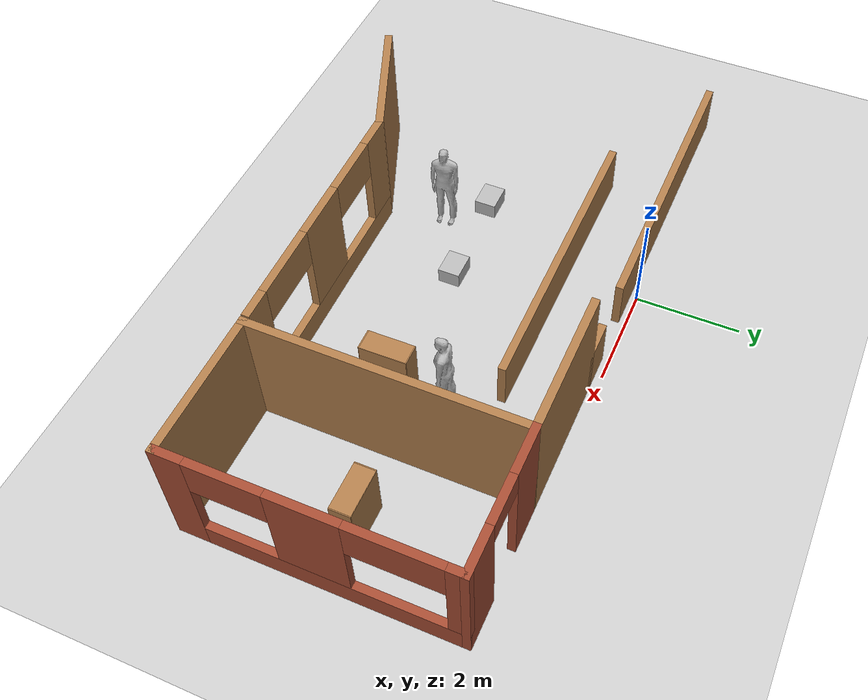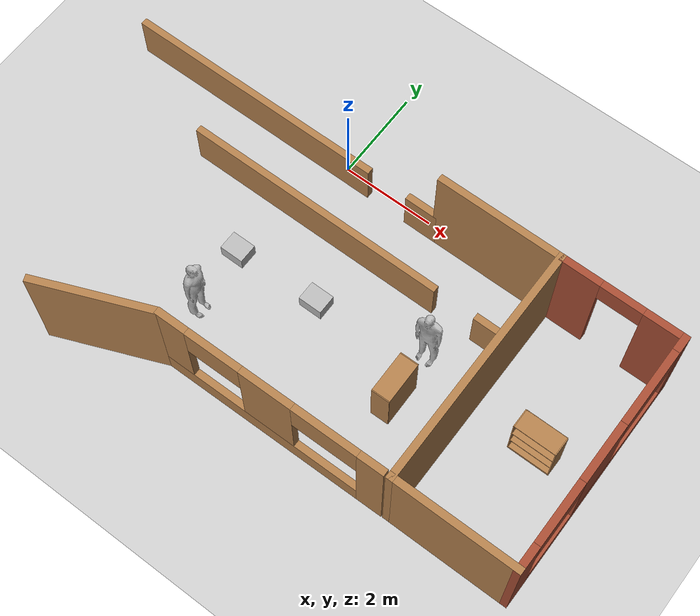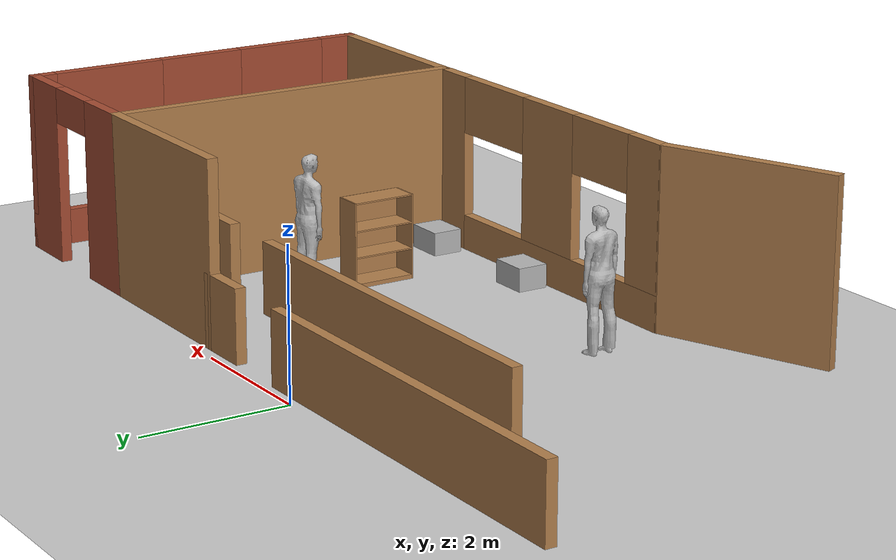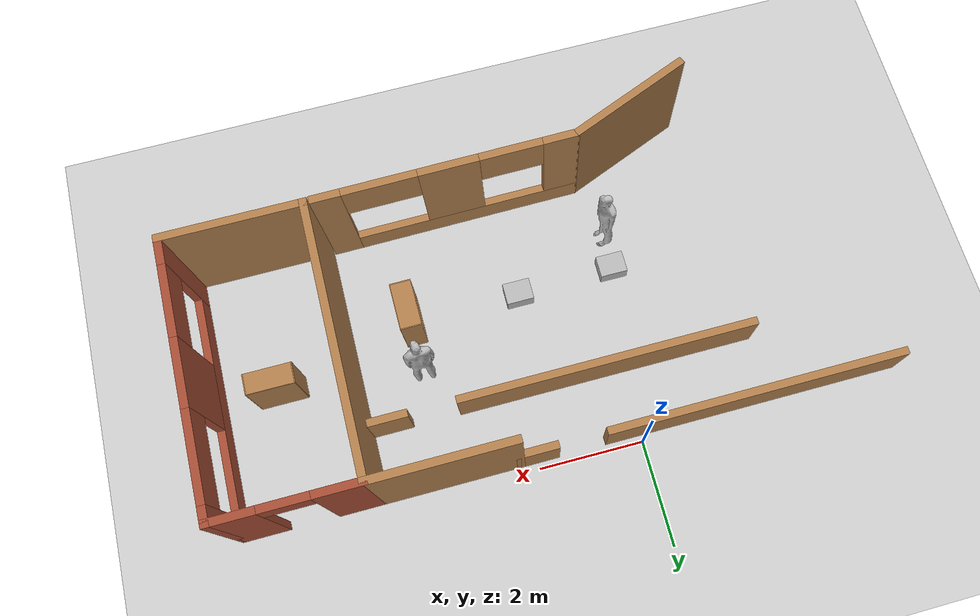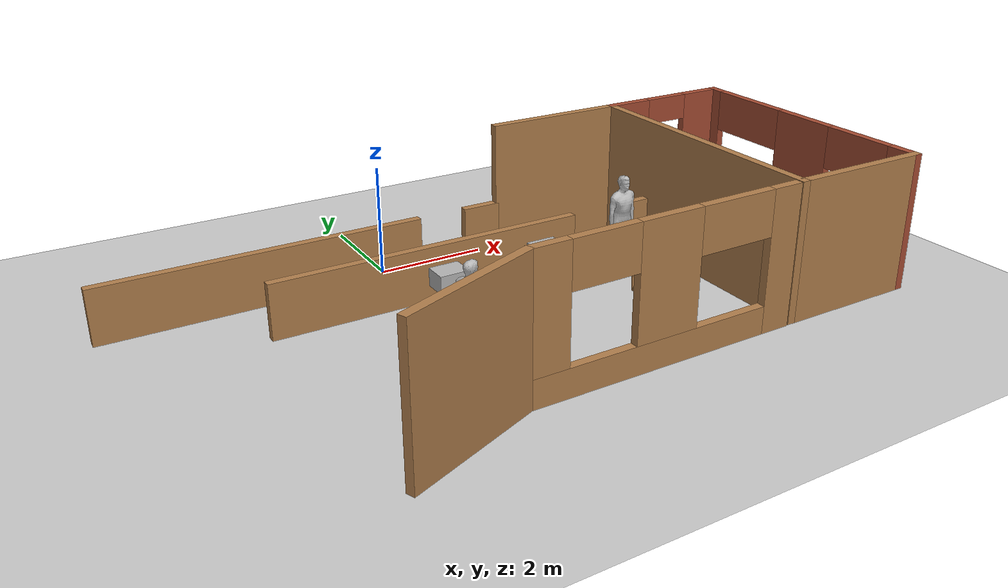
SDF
<sdf version="1.7">
 <world name="default">
  <model name="ground_plane">
   <static>1</static>
   <link name="link">
    <collision name="collision">
     <geometry><plane><normal>0 0 1</normal><size>100 100</size></plane></geometry>
     <surface><friction><ode><mu>100</mu><mu2>50</mu2></ode></friction></surface>
    </collision>
    <visual name="visual">
     <cast_shadows>0</cast_shadows>
     <geometry><plane><normal>0 0 1</normal><size>100 100</size></plane></geometry>
     <material>
      <script><uri>file://media/materials/scripts/gazebo.material</uri><name>Gazebo/Grey</name></script>
     </material>
    </visual>
   </link>
  </model>
  <model name="turtlebot3_house3">
   <link name="Wall_106">
    <pose>6.2 -0.175 0 0 -0 0</pose>
    <visual name="Wall_106_Visual_2">
     <pose>0.019471 0 2.25 0 -0 0</pose>
     <geometry><box><size>0.9 0.15 0.5</size></box></geometry>
     <material>
      <script><uri>file://media/materials/scripts/gazebo.material</uri><name>Gazebo/Bricks</name></script>
      <ambient>1 1 1 1</ambient>
      <diffuse>1 1 1 1</diffuse>
      <specular>0.2 0.2 0.2 1</specular>
      <emissive>0 0 0 1</emissive>
      <shader type="pixel"/>
     </material>
    </visual>
    <visual name="Wall_106_Visual_0">
     <pose>-0.902765 0 1.25 0 -0 0</pose>
     <geometry><box><size>0.944471 0.15 2.5</size></box></geometry>
     <material>
      <script><uri>file://media/materials/scripts/gazebo.material</uri><name>Gazebo/Bricks</name></script>
      <ambient>1 1 1 1</ambient>
      <diffuse>1 1 1 1</diffuse>
      <specular>0.2 0.2 0.2 1</specular>
      <emissive>0 0 0 1</emissive>
      <shader type="pixel"/>
     </material>
    </visual>
    <visual name="Wall_106_Visual_1">
     <pose>0.922235 0 1.25 0 -0 0</pose>
     <geometry><box><size>0.905529 0.15 2.5</size></box></geometry>
     <material>
      <script><uri>file://media/materials/scripts/gazebo.material</uri><name>Gazebo/Bricks</name></script>
      <ambient>1 1 1 1</ambient>
      <diffuse>1 1 1 1</diffuse>
      <specular>0.2 0.2 0.2 1</specular>
      <emissive>0 0 0 1</emissive>
      <shader type="pixel"/>
     </material>
    </visual>
    <collision name="Wall_106_Collision_0">
     <pose>-0.902765 0 1.25 0 -0 0</pose>
     <geometry><box><size>0.944471 0.15 2.5</size></box></geometry>
     <surface>
      <friction>
       <ode><mu>1</mu><mu2>1</mu2><fdir1>0 0 0</fdir1><slip1>0</slip1><slip2>0</slip2></ode>
       <torsional>
        <coefficient>1</coefficient>
        <patch_radius>0</patch_radius>
        <surface_radius>0</surface_radius>
        <use_patch_radius>1</use_patch_radius>
        <ode><slip>0</slip></ode>
       </torsional>
      </friction>
      <bounce><restitution_coefficient>0</restitution_coefficient><threshold>1e+06</threshold></bounce>
      <contact>
       <collide_without_contact>0</collide_without_contact>
       <collide_without_contact_bitmask>1</collide_without_contact_bitmask>
       <collide_bitmask>1</collide_bitmask>
       <ode>
        <soft_cfm>0</soft_cfm>
        <soft_erp>0.2</soft_erp>
        <kp>1e+13</kp>
        <kd>1</kd>
        <max_vel>0.01</max_vel>
        <min_depth>0</min_depth>
       </ode>
       <bullet>
        <split_impulse>1</split_impulse>
        <split_impulse_penetration_threshold>-0.01</split_impulse_penetration_threshold>
        <soft_cfm>0</soft_cfm>
        <soft_erp>0.2</soft_erp>
        <kp>1e+13</kp>
        <kd>1</kd>
       </bullet>
      </contact>
     </surface>
    </collision>
    <collision name="Wall_106_Collision_1">
     <pose>0.922235 0 1.25 0 -0 0</pose>
     <geometry><box><size>0.905529 0.15 2.5</size></box></geometry>
     <surface>
      <friction>
       <ode><mu>1</mu><mu2>1</mu2><fdir1>0 0 0</fdir1><slip1>0</slip1><slip2>0</slip2></ode>
       <torsional>
        <coefficient>1</coefficient>
        <patch_radius>0</patch_radius>
        <surface_radius>0</surface_radius>
        <use_patch_radius>1</use_patch_radius>
        <ode><slip>0</slip></ode>
       </torsional>
      </friction>
      <bounce><restitution_coefficient>0</restitution_coefficient><threshold>1e+06</threshold></bounce>
      <contact>
       <collide_without_contact>0</collide_without_contact>
       <collide_without_contact_bitmask>1</collide_without_contact_bitmask>
       <collide_bitmask>1</collide_bitmask>
       <ode>
        <soft_cfm>0</soft_cfm>
        <soft_erp>0.2</soft_erp>
        <kp>1e+13</kp>
        <kd>1</kd>
        <max_vel>0.01</max_vel>
        <min_depth>0</min_depth>
       </ode>
       <bullet>
        <split_impulse>1</split_impulse>
        <split_impulse_penetration_threshold>-0.01</split_impulse_penetration_threshold>
        <soft_cfm>0</soft_cfm>
        <soft_erp>0.2</soft_erp>
        <kp>1e+13</kp>
        <kd>1</kd>
       </bullet>
      </contact>
     </surface>
    </collision>
    <collision name="Wall_106_Collision_2">
     <pose>0.019471 0 2.25 0 -0 0</pose>
     <geometry><box><size>0.9 0.15 0.5</size></box></geometry>
     <surface>
      <friction>
       <ode><mu>1</mu><mu2>1</mu2><fdir1>0 0 0</fdir1><slip1>0</slip1><slip2>0</slip2></ode>
       <torsional>
        <coefficient>1</coefficient>
        <patch_radius>0</patch_radius>
        <surface_radius>0</surface_radius>
        <use_patch_radius>1</use_patch_radius>
        <ode><slip>0</slip></ode>
       </torsional>
      </friction>
      <bounce><restitution_coefficient>0</restitution_coefficient><threshold>1e+06</threshold></bounce>
      <contact>
       <collide_without_contact>0</collide_without_contact>
       <collide_without_contact_bitmask>1</collide_without_contact_bitmask>
       <collide_bitmask>1</collide_bitmask>
       <ode>
        <soft_cfm>0</soft_cfm>
        <soft_erp>0.2</soft_erp>
        <kp>1e+13</kp>
        <kd>1</kd>
        <max_vel>0.01</max_vel>
        <min_depth>0</min_depth>
       </ode>
       <bullet>
        <split_impulse>1</split_impulse>
        <split_impulse_penetration_threshold>-0.01</split_impulse_penetration_threshold>
        <soft_cfm>0</soft_cfm>
        <soft_erp>0.2</soft_erp>
        <kp>1e+13</kp>
        <kd>1</kd>
       </bullet>
      </contact>
     </surface>
    </collision>
   </link>
   <link name="Wall_108">
    <pose>-1.37512 -0.17488 0 0 -0 0</pose>
    <visual name="Wall_108_Visual_1">
     <pose>3.34368 0 0.5 0 -0 0</pose>
     <geometry><box><size>0.812647 0.15 1</size></box></geometry>
     <material>
      <script><uri>file://media/materials/scripts/gazebo.material</uri><name>Gazebo/Wood</name></script>
      <ambient>1 1 1 1</ambient>
      <diffuse>1 1 1 1</diffuse>
      <specular>0.2 0.2 0.2 1</specular>
      <emissive>0 0 0 1</emissive>
      <shader type="pixel"/>
     </material>
    </visual>
    <visual name="Wall_108_Visual_0">
     <pose>-0.856324 0 0.5 0 -0 0</pose>
     <geometry><box><size>5.78735 0.15 1</size></box></geometry>
     <material>
      <script><uri>file://media/materials/scripts/gazebo.material</uri><name>Gazebo/Wood</name></script>
      <ambient>1 1 1 1</ambient>
      <diffuse>1 1 1 1</diffuse>
      <specular>0.2 0.2 0.2 1</specular>
      <emissive>0 0 0 1</emissive>
      <shader type="pixel"/>
     </material>
    </visual>
    <collision name="Wall_108_Collision_0">
     <pose>-0.856324 0 0.5 0 -0 0</pose>
     <geometry><box><size>5.78735 0.15 1</size></box></geometry>
     <surface>
      <friction>
       <ode><mu>1</mu><mu2>1</mu2><fdir1>0 0 0</fdir1><slip1>0</slip1><slip2>0</slip2></ode>
       <torsional>
        <coefficient>1</coefficient>
        <patch_radius>0</patch_radius>
        <surface_radius>0</surface_radius>
        <use_patch_radius>1</use_patch_radius>
        <ode><slip>0</slip></ode>
       </torsional>
      </friction>
      <bounce><restitution_coefficient>0</restitution_coefficient><threshold>1e+06</threshold></bounce>
      <contact>
       <collide_without_contact>0</collide_without_contact>
       <collide_without_contact_bitmask>1</collide_without_contact_bitmask>
       <collide_bitmask>1</collide_bitmask>
       <ode>
        <soft_cfm>0</soft_cfm>
        <soft_erp>0.2</soft_erp>
        <kp>1e+13</kp>
        <kd>1</kd>
        <max_vel>0.01</max_vel>
        <min_depth>0</min_depth>
       </ode>
       <bullet>
        <split_impulse>1</split_impulse>
        <split_impulse_penetration_threshold>-0.01</split_impulse_penetration_threshold>
        <soft_cfm>0</soft_cfm>
        <soft_erp>0.2</soft_erp>
        <kp>1e+13</kp>
        <kd>1</kd>
       </bullet>
      </contact>
     </surface>
    </collision>
    <collision name="Wall_108_Collision_1">
     <pose>3.34368 0 0.5 0 -0 0</pose>
     <geometry><box><size>0.812647 0.15 1</size></box></geometry>
     <surface>
      <friction>
       <ode><mu>1</mu><mu2>1</mu2><fdir1>0 0 0</fdir1><slip1>0</slip1><slip2>0</slip2></ode>
       <torsional>
        <coefficient>1</coefficient>
        <patch_radius>0</patch_radius>
        <surface_radius>0</surface_radius>
        <use_patch_radius>1</use_patch_radius>
        <ode><slip>0</slip></ode>
       </torsional>
      </friction>
      <bounce><restitution_coefficient>0</restitution_coefficient><threshold>1e+06</threshold></bounce>
      <contact>
       <collide_without_contact>0</collide_without_contact>
       <collide_without_contact_bitmask>1</collide_without_contact_bitmask>
       <collide_bitmask>1</collide_bitmask>
       <ode>
        <soft_cfm>0</soft_cfm>
        <soft_erp>0.2</soft_erp>
        <kp>1e+13</kp>
        <kd>1</kd>
        <max_vel>0.01</max_vel>
        <min_depth>0</min_depth>
       </ode>
       <bullet>
        <split_impulse>1</split_impulse>
        <split_impulse_penetration_threshold>-0.01</split_impulse_penetration_threshold>
        <soft_cfm>0</soft_cfm>
        <soft_erp>0.2</soft_erp>
        <kp>1e+13</kp>
        <kd>1</kd>
       </bullet>
      </contact>
     </surface>
    </collision>
   </link>
   <link name="Wall_108_clone">
    <pose>1.12429 -1.44761 0 0 -0 0</pose>
    <visual name="Wall_108_Visual_1">
     <pose>3.34368 0 0.5 0 -0 0</pose>
     <geometry><box><size>0.812647 0.15 1</size></box></geometry>
     <material>
      <script><uri>file://media/materials/scripts/gazebo.material</uri><name>Gazebo/Wood</name></script>
      <ambient>1 1 1 1</ambient>
      <diffuse>1 1 1 1</diffuse>
      <specular>0.2 0.2 0.2 1</specular>
      <emissive>0 0 0 1</emissive>
      <shader type="pixel"/>
     </material>
    </visual>
    <visual name="Wall_108_Visual_0">
     <pose>-0.856324 0 0.5 0 -0 0</pose>
     <geometry><box><size>5.78735 0.15 1</size></box></geometry>
     <material>
      <script><uri>file://media/materials/scripts/gazebo.material</uri><name>Gazebo/Wood</name></script>
      <ambient>1 1 1 1</ambient>
      <diffuse>1 1 1 1</diffuse>
      <specular>0.2 0.2 0.2 1</specular>
      <emissive>0 0 0 1</emissive>
      <shader type="pixel"/>
     </material>
    </visual>
    <collision name="Wall_108_Collision_0">
     <pose>-0.856324 0 0.5 0 -0 0</pose>
     <geometry><box><size>5.78735 0.15 1</size></box></geometry>
     <surface>
      <friction>
       <ode><mu>1</mu><mu2>1</mu2><fdir1>0 0 0</fdir1><slip1>0</slip1><slip2>0</slip2></ode>
       <torsional>
        <coefficient>1</coefficient>
        <patch_radius>0</patch_radius>
        <surface_radius>0</surface_radius>
        <use_patch_radius>1</use_patch_radius>
        <ode><slip>0</slip></ode>
       </torsional>
      </friction>
      <bounce><restitution_coefficient>0</restitution_coefficient><threshold>1e+06</threshold></bounce>
      <contact>
       <collide_without_contact>0</collide_without_contact>
       <collide_without_contact_bitmask>1</collide_without_contact_bitmask>
       <collide_bitmask>1</collide_bitmask>
       <ode>
        <soft_cfm>0</soft_cfm>
        <soft_erp>0.2</soft_erp>
        <kp>1e+13</kp>
        <kd>1</kd>
        <max_vel>0.01</max_vel>
        <min_depth>0</min_depth>
       </ode>
       <bullet>
        <split_impulse>1</split_impulse>
        <split_impulse_penetration_threshold>-0.01</split_impulse_penetration_threshold>
        <soft_cfm>0</soft_cfm>
        <soft_erp>0.2</soft_erp>
        <kp>1e+13</kp>
        <kd>1</kd>
       </bullet>
      </contact>
     </surface>
    </collision>
    <collision name="Wall_108_Collision_1">
     <pose>3.34368 0 0.5 0 -0 0</pose>
     <geometry><box><size>0.812647 0.15 1</size></box></geometry>
     <surface>
      <friction>
       <ode><mu>1</mu><mu2>1</mu2><fdir1>0 0 0</fdir1><slip1>0</slip1><slip2>0</slip2></ode>
       <torsional>
        <coefficient>1</coefficient>
        <patch_radius>0</patch_radius>
        <surface_radius>0</surface_radius>
        <use_patch_radius>1</use_patch_radius>
        <ode><slip>0</slip></ode>
       </torsional>
      </friction>
      <bounce><restitution_coefficient>0</restitution_coefficient><threshold>1e+06</threshold></bounce>
      <contact>
       <collide_without_contact>0</collide_without_contact>
       <collide_without_contact_bitmask>1</collide_without_contact_bitmask>
       <collide_bitmask>1</collide_bitmask>
       <ode>
        <soft_cfm>0</soft_cfm>
        <soft_erp>0.2</soft_erp>
        <kp>1e+13</kp>
        <kd>1</kd>
        <max_vel>0.01</max_vel>
        <min_depth>0</min_depth>
       </ode>
       <bullet>
        <split_impulse>1</split_impulse>
        <split_impulse_penetration_threshold>-0.01</split_impulse_penetration_threshold>
        <soft_cfm>0</soft_cfm>
        <soft_erp>0.2</soft_erp>
        <kp>1e+13</kp>
        <kd>1</kd>
       </bullet>
      </contact>
     </surface>
    </collision>
   </link>
   <link name="Wall_86_clone">
    <pose>2.29863 -5.30416 0 0 0 -3.13248</pose>
    <visual name="Wall_86_Visual_2">
     <pose>0.0521 0 1.5 0 -0 0</pose>
     <geometry><box><size>1.14172 0.15 2</size></box></geometry>
     <material>
      <script><uri>file://media/materials/scripts/gazebo.material</uri><name>Gazebo/Wood</name></script>
      <ambient>1 1 1 1</ambient>
      <diffuse>1 1 1 1</diffuse>
      <specular>0.2 0.2 0.2 1</specular>
      <emissive>0 0 0 1</emissive>
      <shader type="pixel"/>
     </material>
    </visual>
    <visual name="Wall_86_Visual_3">
     <pose>2.16098 0 1.5 0 -0 0</pose>
     <geometry><box><size>0.678041 0.15 2</size></box></geometry>
     <material>
      <script><uri>file://media/materials/scripts/gazebo.material</uri><name>Gazebo/Wood</name></script>
      <ambient>1 1 1 1</ambient>
      <diffuse>1 1 1 1</diffuse>
      <specular>0.2 0.2 0.2 1</specular>
      <emissive>0 0 0 1</emissive>
      <shader type="pixel"/>
     </material>
    </visual>
    <visual name="Wall_86_Visual_4">
     <pose>-1.22476 0 2.1 0 -0 0</pose>
     <geometry><box><size>1.412 0.15 0.8</size></box></geometry>
     <material>
      <script><uri>file://media/materials/scripts/gazebo.material</uri><name>Gazebo/Wood</name></script>
      <ambient>1 1 1 1</ambient>
      <diffuse>1 1 1 1</diffuse>
      <specular>0.2 0.2 0.2 1</specular>
      <emissive>0 0 0 1</emissive>
      <shader type="pixel"/>
     </material>
    </visual>
    <visual name="Wall_86_Visual_1">
     <pose>0.28462 0 0.25 0 -0 0</pose>
     <geometry><box><size>4.43076 0.15 0.5</size></box></geometry>
     <material>
      <script><uri>file://media/materials/scripts/gazebo.material</uri><name>Gazebo/Wood</name></script>
      <ambient>1 1 1 1</ambient>
      <diffuse>1 1 1 1</diffuse>
      <specular>0.2 0.2 0.2 1</specular>
      <emissive>0 0 0 1</emissive>
      <shader type="pixel"/>
     </material>
    </visual>
    <visual name="Wall_86_Visual_5">
     <pose>1.22246 0 2.1 0 -0 0</pose>
     <geometry><box><size>1.199 0.15 0.8</size></box></geometry>
     <material>
      <script><uri>file://media/materials/scripts/gazebo.material</uri><name>Gazebo/Wood</name></script>
      <ambient>1 1 1 1</ambient>
      <diffuse>1 1 1 1</diffuse>
      <specular>0.2 0.2 0.2 1</specular>
      <emissive>0 0 0 1</emissive>
      <shader type="pixel"/>
     </material>
    </visual>
    <visual name="Wall_86_Visual_0">
     <pose>-2.21538 0 1.25 0 -0 0</pose>
     <geometry><box><size>0.569241 0.15 2.5</size></box></geometry>
     <material>
      <script><uri>file://media/materials/scripts/gazebo.material</uri><name>Gazebo/Wood</name></script>
      <ambient>1 1 1 1</ambient>
      <diffuse>1 1 1 1</diffuse>
      <specular>0.2 0.2 0.2 1</specular>
      <emissive>0 0 0 1</emissive>
      <shader type="pixel"/>
     </material>
    </visual>
    <collision name="Wall_86_Collision_0">
     <pose>-2.21538 0 1.25 0 -0 0</pose>
     <geometry><box><size>0.569241 0.15 2.5</size></box></geometry>
     <surface>
      <friction>
       <ode><mu>1</mu><mu2>1</mu2><fdir1>0 0 0</fdir1><slip1>0</slip1><slip2>0</slip2></ode>
       <torsional>
        <coefficient>1</coefficient>
        <patch_radius>0</patch_radius>
        <surface_radius>0</surface_radius>
        <use_patch_radius>1</use_patch_radius>
        <ode><slip>0</slip></ode>
       </torsional>
      </friction>
      <bounce><restitution_coefficient>0</restitution_coefficient><threshold>1e+06</threshold></bounce>
      <contact>
       <collide_without_contact>0</collide_without_contact>
       <collide_without_contact_bitmask>1</collide_without_contact_bitmask>
       <collide_bitmask>1</collide_bitmask>
       <ode>
        <soft_cfm>0</soft_cfm>
        <soft_erp>0.2</soft_erp>
        <kp>1e+13</kp>
        <kd>1</kd>
        <max_vel>0.01</max_vel>
        <min_depth>0</min_depth>
       </ode>
       <bullet>
        <split_impulse>1</split_impulse>
        <split_impulse_penetration_threshold>-0.01</split_impulse_penetration_threshold>
        <soft_cfm>0</soft_cfm>
        <soft_erp>0.2</soft_erp>
        <kp>1e+13</kp>
        <kd>1</kd>
       </bullet>
      </contact>
     </surface>
    </collision>
    <collision name="Wall_86_Collision_4">
     <pose>-1.22476 0 2.1 0 -0 0</pose>
     <geometry><box><size>1.412 0.15 0.8</size></box></geometry>
     <surface>
      <friction>
       <ode><mu>1</mu><mu2>1</mu2><fdir1>0 0 0</fdir1><slip1>0</slip1><slip2>0</slip2></ode>
       <torsional>
        <coefficient>1</coefficient>
        <patch_radius>0</patch_radius>
        <surface_radius>0</surface_radius>
        <use_patch_radius>1</use_patch_radius>
        <ode><slip>0</slip></ode>
       </torsional>
      </friction>
      <bounce><restitution_coefficient>0</restitution_coefficient><threshold>1e+06</threshold></bounce>
      <contact>
       <collide_without_contact>0</collide_without_contact>
       <collide_without_contact_bitmask>1</collide_without_contact_bitmask>
       <collide_bitmask>1</collide_bitmask>
       <ode>
        <soft_cfm>0</soft_cfm>
        <soft_erp>0.2</soft_erp>
        <kp>1e+13</kp>
        <kd>1</kd>
        <max_vel>0.01</max_vel>
        <min_depth>0</min_depth>
       </ode>
       <bullet>
        <split_impulse>1</split_impulse>
        <split_impulse_penetration_threshold>-0.01</split_impulse_penetration_threshold>
        <soft_cfm>0</soft_cfm>
        <soft_erp>0.2</soft_erp>
        <kp>1e+13</kp>
        <kd>1</kd>
       </bullet>
      </contact>
     </surface>
    </collision>
    <collision name="Wall_86_Collision_3">
     <pose>2.16098 0 1.5 0 -0 0</pose>
     <geometry><box><size>0.678041 0.15 2</size></box></geometry>
     <surface>
      <friction>
       <ode><mu>1</mu><mu2>1</mu2><fdir1>0 0 0</fdir1><slip1>0</slip1><slip2>0</slip2></ode>
       <torsional>
        <coefficient>1</coefficient>
        <patch_radius>0</patch_radius>
        <surface_radius>0</surface_radius>
        <use_patch_radius>1</use_patch_radius>
        <ode><slip>0</slip></ode>
       </torsional>
      </friction>
      <bounce><restitution_coefficient>0</restitution_coefficient><threshold>1e+06</threshold></bounce>
      <contact>
       <collide_without_contact>0</collide_without_contact>
       <collide_without_contact_bitmask>1</collide_without_contact_bitmask>
       <collide_bitmask>1</collide_bitmask>
       <ode>
        <soft_cfm>0</soft_cfm>
        <soft_erp>0.2</soft_erp>
        <kp>1e+13</kp>
        <kd>1</kd>
        <max_vel>0.01</max_vel>
        <min_depth>0</min_depth>
       </ode>
       <bullet>
        <split_impulse>1</split_impulse>
        <split_impulse_penetration_threshold>-0.01</split_impulse_penetration_threshold>
        <soft_cfm>0</soft_cfm>
        <soft_erp>0.2</soft_erp>
        <kp>1e+13</kp>
        <kd>1</kd>
       </bullet>
      </contact>
     </surface>
    </collision>
    <collision name="Wall_86_Collision_2">
     <pose>0.0521 0 1.5 0 -0 0</pose>
     <geometry><box><size>1.14172 0.15 2</size></box></geometry>
     <surface>
      <friction>
       <ode><mu>1</mu><mu2>1</mu2><fdir1>0 0 0</fdir1><slip1>0</slip1><slip2>0</slip2></ode>
       <torsional>
        <coefficient>1</coefficient>
        <patch_radius>0</patch_radius>
        <surface_radius>0</surface_radius>
        <use_patch_radius>1</use_patch_radius>
        <ode><slip>0</slip></ode>
       </torsional>
      </friction>
      <bounce><restitution_coefficient>0</restitution_coefficient><threshold>1e+06</threshold></bounce>
      <contact>
       <collide_without_contact>0</collide_without_contact>
       <collide_without_contact_bitmask>1</collide_without_contact_bitmask>
       <collide_bitmask>1</collide_bitmask>
       <ode>
        <soft_cfm>0</soft_cfm>
        <soft_erp>0.2</soft_erp>
        <kp>1e+13</kp>
        <kd>1</kd>
        <max_vel>0.01</max_vel>
        <min_depth>0</min_depth>
       </ode>
       <bullet>
        <split_impulse>1</split_impulse>
        <split_impulse_penetration_threshold>-0.01</split_impulse_penetration_threshold>
        <soft_cfm>0</soft_cfm>
        <soft_erp>0.2</soft_erp>
        <kp>1e+13</kp>
        <kd>1</kd>
       </bullet>
      </contact>
     </surface>
    </collision>
    <collision name="Wall_86_Collision_1">
     <pose>0.28462 0 0.25 0 -0 0</pose>
     <geometry><box><size>4.43076 0.15 0.5</size></box></geometry>
     <surface>
      <friction>
       <ode><mu>1</mu><mu2>1</mu2><fdir1>0 0 0</fdir1><slip1>0</slip1><slip2>0</slip2></ode>
       <torsional>
        <coefficient>1</coefficient>
        <patch_radius>0</patch_radius>
        <surface_radius>0</surface_radius>
        <use_patch_radius>1</use_patch_radius>
        <ode><slip>0</slip></ode>
       </torsional>
      </friction>
      <bounce><restitution_coefficient>0</restitution_coefficient><threshold>1e+06</threshold></bounce>
      <contact>
       <collide_without_contact>0</collide_without_contact>
       <collide_without_contact_bitmask>1</collide_without_contact_bitmask>
       <collide_bitmask>1</collide_bitmask>
       <ode>
        <soft_cfm>0</soft_cfm>
        <soft_erp>0.2</soft_erp>
        <kp>1e+13</kp>
        <kd>1</kd>
        <max_vel>0.01</max_vel>
        <min_depth>0</min_depth>
       </ode>
       <bullet>
        <split_impulse>1</split_impulse>
        <split_impulse_penetration_threshold>-0.01</split_impulse_penetration_threshold>
        <soft_cfm>0</soft_cfm>
        <soft_erp>0.2</soft_erp>
        <kp>1e+13</kp>
        <kd>1</kd>
       </bullet>
      </contact>
     </surface>
    </collision>
    <collision name="Wall_86_Collision_5">
     <pose>1.22246 0 2.1 0 -0 0</pose>
     <geometry><box><size>1.199 0.15 0.8</size></box></geometry>
     <surface>
      <friction>
       <ode><mu>1</mu><mu2>1</mu2><fdir1>0 0 0</fdir1><slip1>0</slip1><slip2>0</slip2></ode>
       <torsional>
        <coefficient>1</coefficient>
        <patch_radius>0</patch_radius>
        <surface_radius>0</surface_radius>
        <use_patch_radius>1</use_patch_radius>
        <ode><slip>0</slip></ode>
       </torsional>
      </friction>
      <bounce><restitution_coefficient>0</restitution_coefficient><threshold>1e+06</threshold></bounce>
      <contact>
       <collide_without_contact>0</collide_without_contact>
       <collide_without_contact_bitmask>1</collide_without_contact_bitmask>
       <collide_bitmask>1</collide_bitmask>
       <ode>
        <soft_cfm>0</soft_cfm>
        <soft_erp>0.2</soft_erp>
        <kp>1e+13</kp>
        <kd>1</kd>
        <max_vel>0.01</max_vel>
        <min_depth>0</min_depth>
       </ode>
       <bullet>
        <split_impulse>1</split_impulse>
        <split_impulse_penetration_threshold>-0.01</split_impulse_penetration_threshold>
        <soft_cfm>0</soft_cfm>
        <soft_erp>0.2</soft_erp>
        <kp>1e+13</kp>
        <kd>1</kd>
       </bullet>
      </contact>
     </surface>
    </collision>
   </link>
   <link name="Wall_87_clone_clone_0_clone">
    <pose>-1.30998 -5.79101 0 0 0 -2.75487</pose>
    <visual name="Wall_87_Visual">
     <pose>0 0 1.25 0 -0 0</pose>
     <geometry><box><size>2.5 0.15 2.5</size></box></geometry>
     <material>
      <script><uri>file://media/materials/scripts/gazebo.material</uri><name>Gazebo/Wood</name></script>
      <ambient>1 1 1 1</ambient>
      <diffuse>1 1 1 1</diffuse>
      <specular>0.2 0.2 0.2 1</specular>
      <emissive>0 0 0 1</emissive>
      <shader type="pixel"/>
     </material>
    </visual>
    <collision name="Wall_87_Collision">
     <pose>0 0 1.25 0 -0 0</pose>
     <geometry><box><size>2.5 0.15 2.5</size></box></geometry>
     <surface>
      <friction>
       <ode><mu>1</mu><mu2>1</mu2><fdir1>0 0 0</fdir1><slip1>0</slip1><slip2>0</slip2></ode>
       <torsional>
        <coefficient>1</coefficient>
        <patch_radius>0</patch_radius>
        <surface_radius>0</surface_radius>
        <use_patch_radius>1</use_patch_radius>
        <ode><slip>0</slip></ode>
       </torsional>
      </friction>
      <bounce><restitution_coefficient>0</restitution_coefficient><threshold>1e+06</threshold></bounce>
      <contact>
       <collide_without_contact>0</collide_without_contact>
       <collide_without_contact_bitmask>1</collide_without_contact_bitmask>
       <collide_bitmask>1</collide_bitmask>
       <ode>
        <soft_cfm>0</soft_cfm>
        <soft_erp>0.2</soft_erp>
        <kp>1e+13</kp>
        <kd>1</kd>
        <max_vel>0.01</max_vel>
        <min_depth>0</min_depth>
       </ode>
       <bullet>
        <split_impulse>1</split_impulse>
        <split_impulse_penetration_threshold>-0.01</split_impulse_penetration_threshold>
        <soft_cfm>0</soft_cfm>
        <soft_erp>0.2</soft_erp>
        <kp>1e+13</kp>
        <kd>1</kd>
       </bullet>
      </contact>
     </surface>
    </collision>
   </link>
   <link name="Wall_92">
    <pose>3.59994 -0.17494 0 0 0 -4.6e-05</pose>
    <visual name="Wall_92_Visual">
     <pose>0 0 1.25 0 -0 0</pose>
     <geometry><box><size>2.75 0.15 2.5</size></box></geometry>
     <material>
      <script><uri>file://media/materials/scripts/gazebo.material</uri><name>Gazebo/Wood</name></script>
      <ambient>1 1 1 1</ambient>
      <diffuse>1 1 1 1</diffuse>
      <specular>0.2 0.2 0.2 1</specular>
      <emissive>0 0 0 1</emissive>
      <shader type="pixel"/>
     </material>
    </visual>
    <collision name="Wall_92_Collision">
     <pose>0 0 1.25 0 -0 0</pose>
     <geometry><box><size>2.75 0.15 2.5</size></box></geometry>
     <surface>
      <friction>
       <ode><mu>1</mu><mu2>1</mu2><fdir1>0 0 0</fdir1><slip1>0</slip1><slip2>0</slip2></ode>
       <torsional>
        <coefficient>1</coefficient>
        <patch_radius>0</patch_radius>
        <surface_radius>0</surface_radius>
        <use_patch_radius>1</use_patch_radius>
        <ode><slip>0</slip></ode>
       </torsional>
      </friction>
      <bounce><restitution_coefficient>0</restitution_coefficient><threshold>1e+06</threshold></bounce>
      <contact>
       <collide_without_contact>0</collide_without_contact>
       <collide_without_contact_bitmask>1</collide_without_contact_bitmask>
       <collide_bitmask>1</collide_bitmask>
       <ode>
        <soft_cfm>0</soft_cfm>
        <soft_erp>0.2</soft_erp>
        <kp>1e+13</kp>
        <kd>1</kd>
        <max_vel>0.01</max_vel>
        <min_depth>0</min_depth>
       </ode>
       <bullet>
        <split_impulse>1</split_impulse>
        <split_impulse_penetration_threshold>-0.01</split_impulse_penetration_threshold>
        <soft_cfm>0</soft_cfm>
        <soft_erp>0.2</soft_erp>
        <kp>1e+13</kp>
        <kd>1</kd>
       </bullet>
      </contact>
     </surface>
    </collision>
   </link>
   <link name="Wall_93">
    <pose>4.9 -2.725 0 0 0 -1.5708</pose>
    <visual name="Wall_93_Visual">
     <pose>0 0 1.25 0 -0 0</pose>
     <geometry><box><size>5.25 0.15 2.5</size></box></geometry>
     <material>
      <script><uri>file://media/materials/scripts/gazebo.material</uri><name>Gazebo/Wood</name></script>
      <ambient>1 1 1 1</ambient>
      <diffuse>1 1 1 1</diffuse>
      <specular>0.2 0.2 0.2 1</specular>
      <emissive>0 0 0 1</emissive>
      <shader type="pixel"/>
     </material>
    </visual>
    <collision name="Wall_93_Collision">
     <pose>0 0 1.25 0 -0 0</pose>
     <geometry><box><size>5.25 0.15 2.5</size></box></geometry>
     <surface>
      <friction>
       <ode><mu>1</mu><mu2>1</mu2><fdir1>0 0 0</fdir1><slip1>0</slip1><slip2>0</slip2></ode>
       <torsional>
        <coefficient>1</coefficient>
        <patch_radius>0</patch_radius>
        <surface_radius>0</surface_radius>
        <use_patch_radius>1</use_patch_radius>
        <ode><slip>0</slip></ode>
       </torsional>
      </friction>
      <bounce><restitution_coefficient>0</restitution_coefficient><threshold>1e+06</threshold></bounce>
      <contact>
       <collide_without_contact>0</collide_without_contact>
       <collide_without_contact_bitmask>1</collide_without_contact_bitmask>
       <collide_bitmask>1</collide_bitmask>
       <ode>
        <soft_cfm>0</soft_cfm>
        <soft_erp>0.2</soft_erp>
        <kp>1e+13</kp>
        <kd>1</kd>
        <max_vel>0.01</max_vel>
        <min_depth>0</min_depth>
       </ode>
       <bullet>
        <split_impulse>1</split_impulse>
        <split_impulse_penetration_threshold>-0.01</split_impulse_penetration_threshold>
        <soft_cfm>0</soft_cfm>
        <soft_erp>0.2</soft_erp>
        <kp>1e+13</kp>
        <kd>1</kd>
       </bullet>
      </contact>
     </surface>
    </collision>
   </link>
   <link name="Wall_94">
    <pose>6.2 -5.275 0 0 -0 0</pose>
    <visual name="Wall_94_Visual">
     <pose>0 0 1.25 0 -0 0</pose>
     <geometry><box><size>2.75 0.15 2.5</size></box></geometry>
     <material>
      <script><uri>file://media/materials/scripts/gazebo.material</uri><name>Gazebo/Wood</name></script>
      <ambient>1 1 1 1</ambient>
      <diffuse>1 1 1 1</diffuse>
      <specular>0.2 0.2 0.2 1</specular>
      <emissive>0 0 0 1</emissive>
      <shader type="pixel"/>
     </material>
    </visual>
    <collision name="Wall_94_Collision">
     <pose>0 0 1.25 0 -0 0</pose>
     <geometry><box><size>2.75 0.15 2.5</size></box></geometry>
     <surface>
      <friction>
       <ode><mu>1</mu><mu2>1</mu2><fdir1>0 0 0</fdir1><slip1>0</slip1><slip2>0</slip2></ode>
       <torsional>
        <coefficient>1</coefficient>
        <patch_radius>0</patch_radius>
        <surface_radius>0</surface_radius>
        <use_patch_radius>1</use_patch_radius>
        <ode><slip>0</slip></ode>
       </torsional>
      </friction>
      <bounce><restitution_coefficient>0</restitution_coefficient><threshold>1e+06</threshold></bounce>
      <contact>
       <collide_without_contact>0</collide_without_contact>
       <collide_without_contact_bitmask>1</collide_without_contact_bitmask>
       <collide_bitmask>1</collide_bitmask>
       <ode>
        <soft_cfm>0</soft_cfm>
        <soft_erp>0.2</soft_erp>
        <kp>1e+13</kp>
        <kd>1</kd>
        <max_vel>0.01</max_vel>
        <min_depth>0</min_depth>
       </ode>
       <bullet>
        <split_impulse>1</split_impulse>
        <split_impulse_penetration_threshold>-0.01</split_impulse_penetration_threshold>
        <soft_cfm>0</soft_cfm>
        <soft_erp>0.2</soft_erp>
        <kp>1e+13</kp>
        <kd>1</kd>
       </bullet>
      </contact>
     </surface>
    </collision>
   </link>
   <link name="Wall_95">
    <pose>7.5 -2.725 0 0 -0 1.5708</pose>
    <visual name="Wall_95_Visual_2">
     <pose>-0.036959 0 1.5 0 -0 0</pose>
     <geometry><box><size>1.27522 0.15 2</size></box></geometry>
     <material>
      <script><uri>file://media/materials/scripts/gazebo.material</uri><name>Gazebo/Bricks</name></script>
      <ambient>1 1 1 1</ambient>
      <diffuse>1 1 1 1</diffuse>
      <specular>0.2 0.2 0.2 1</specular>
      <emissive>0 0 0 1</emissive>
      <shader type="pixel"/>
     </material>
    </visual>
    <visual name="Wall_95_Visual_3">
     <pose>2.43783 0 1.5 0 -0 0</pose>
     <geometry><box><size>0.374348 0.15 2</size></box></geometry>
     <material>
      <script><uri>file://media/materials/scripts/gazebo.material</uri><name>Gazebo/Bricks</name></script>
      <ambient>1 1 1 1</ambient>
      <diffuse>1 1 1 1</diffuse>
      <specular>0.2 0.2 0.2 1</specular>
      <emissive>0 0 0 1</emissive>
      <shader type="pixel"/>
     </material>
    </visual>
    <visual name="Wall_95_Visual_0">
     <pose>-2.32929 0 1.25 0 -0 0</pose>
     <geometry><box><size>0.591431 0.15 2.5</size></box></geometry>
     <material>
      <script><uri>file://media/materials/scripts/gazebo.material</uri><name>Gazebo/Bricks</name></script>
      <ambient>1 1 1 1</ambient>
      <diffuse>1 1 1 1</diffuse>
      <specular>0.2 0.2 0.2 1</specular>
      <emissive>0 0 0 1</emissive>
      <shader type="pixel"/>
     </material>
    </visual>
    <visual name="Wall_95_Visual_1">
     <pose>0.295715 0 0.25 0 -0 0</pose>
     <geometry><box><size>4.65857 0.15 0.5</size></box></geometry>
     <material>
      <script><uri>file://media/materials/scripts/gazebo.material</uri><name>Gazebo/Bricks</name></script>
      <ambient>1 1 1 1</ambient>
      <diffuse>1 1 1 1</diffuse>
      <specular>0.2 0.2 0.2 1</specular>
      <emissive>0 0 0 1</emissive>
      <shader type="pixel"/>
     </material>
    </visual>
    <visual name="Wall_95_Visual_4">
     <pose>-1.35407 0 2.1 0 -0 0</pose>
     <geometry><box><size>1.359 0.15 0.8</size></box></geometry>
     <material>
      <script><uri>file://media/materials/scripts/gazebo.material</uri><name>Gazebo/Bricks</name></script>
      <ambient>1 1 1 1</ambient>
      <diffuse>1 1 1 1</diffuse>
      <specular>0.2 0.2 0.2 1</specular>
      <emissive>0 0 0 1</emissive>
      <shader type="pixel"/>
     </material>
    </visual>
    <visual name="Wall_95_Visual_5">
     <pose>1.42565 0 2.1 0 -0 0</pose>
     <geometry><box><size>1.65 0.15 0.8</size></box></geometry>
     <material>
      <script><uri>file://media/materials/scripts/gazebo.material</uri><name>Gazebo/Bricks</name></script>
      <ambient>1 1 1 1</ambient>
      <diffuse>1 1 1 1</diffuse>
      <specular>0.2 0.2 0.2 1</specular>
      <emissive>0 0 0 1</emissive>
      <shader type="pixel"/>
     </material>
    </visual>
    <collision name="Wall_95_Collision_5">
     <pose>1.42565 0 2.1 0 -0 0</pose>
     <geometry><box><size>1.65 0.15 0.8</size></box></geometry>
     <surface>
      <friction>
       <ode><mu>1</mu><mu2>1</mu2><fdir1>0 0 0</fdir1><slip1>0</slip1><slip2>0</slip2></ode>
       <torsional>
        <coefficient>1</coefficient>
        <patch_radius>0</patch_radius>
        <surface_radius>0</surface_radius>
        <use_patch_radius>1</use_patch_radius>
        <ode><slip>0</slip></ode>
       </torsional>
      </friction>
      <bounce><restitution_coefficient>0</restitution_coefficient><threshold>1e+06</threshold></bounce>
      <contact>
       <collide_without_contact>0</collide_without_contact>
       <collide_without_contact_bitmask>1</collide_without_contact_bitmask>
       <collide_bitmask>1</collide_bitmask>
       <ode>
        <soft_cfm>0</soft_cfm>
        <soft_erp>0.2</soft_erp>
        <kp>1e+13</kp>
        <kd>1</kd>
        <max_vel>0.01</max_vel>
        <min_depth>0</min_depth>
       </ode>
       <bullet>
        <split_impulse>1</split_impulse>
        <split_impulse_penetration_threshold>-0.01</split_impulse_penetration_threshold>
        <soft_cfm>0</soft_cfm>
        <soft_erp>0.2</soft_erp>
        <kp>1e+13</kp>
        <kd>1</kd>
       </bullet>
      </contact>
     </surface>
    </collision>
    <collision name="Wall_95_Collision_2">
     <pose>-0.036959 0 1.5 0 -0 0</pose>
     <geometry><box><size>1.27522 0.15 2</size></box></geometry>
     <surface>
      <friction>
       <ode><mu>1</mu><mu2>1</mu2><fdir1>0 0 0</fdir1><slip1>0</slip1><slip2>0</slip2></ode>
       <torsional>
        <coefficient>1</coefficient>
        <patch_radius>0</patch_radius>
        <surface_radius>0</surface_radius>
        <use_patch_radius>1</use_patch_radius>
        <ode><slip>0</slip></ode>
       </torsional>
      </friction>
      <bounce><restitution_coefficient>0</restitution_coefficient><threshold>1e+06</threshold></bounce>
      <contact>
       <collide_without_contact>0</collide_without_contact>
       <collide_without_contact_bitmask>1</collide_without_contact_bitmask>
       <collide_bitmask>1</collide_bitmask>
       <ode>
        <soft_cfm>0</soft_cfm>
        <soft_erp>0.2</soft_erp>
        <kp>1e+13</kp>
        <kd>1</kd>
        <max_vel>0.01</max_vel>
        <min_depth>0</min_depth>
       </ode>
       <bullet>
        <split_impulse>1</split_impulse>
        <split_impulse_penetration_threshold>-0.01</split_impulse_penetration_threshold>
        <soft_cfm>0</soft_cfm>
        <soft_erp>0.2</soft_erp>
        <kp>1e+13</kp>
        <kd>1</kd>
       </bullet>
      </contact>
     </surface>
    </collision>
    <collision name="Wall_95_Collision_3">
     <pose>2.43783 0 1.5 0 -0 0</pose>
     <geometry><box><size>0.374348 0.15 2</size></box></geometry>
     <surface>
      <friction>
       <ode><mu>1</mu><mu2>1</mu2><fdir1>0 0 0</fdir1><slip1>0</slip1><slip2>0</slip2></ode>
       <torsional>
        <coefficient>1</coefficient>
        <patch_radius>0</patch_radius>
        <surface_radius>0</surface_radius>
        <use_patch_radius>1</use_patch_radius>
        <ode><slip>0</slip></ode>
       </torsional>
      </friction>
      <bounce><restitution_coefficient>0</restitution_coefficient><threshold>1e+06</threshold></bounce>
      <contact>
       <collide_without_contact>0</collide_without_contact>
       <collide_without_contact_bitmask>1</collide_without_contact_bitmask>
       <collide_bitmask>1</collide_bitmask>
       <ode>
        <soft_cfm>0</soft_cfm>
        <soft_erp>0.2</soft_erp>
        <kp>1e+13</kp>
        <kd>1</kd>
        <max_vel>0.01</max_vel>
        <min_depth>0</min_depth>
       </ode>
       <bullet>
        <split_impulse>1</split_impulse>
        <split_impulse_penetration_threshold>-0.01</split_impulse_penetration_threshold>
        <soft_cfm>0</soft_cfm>
        <soft_erp>0.2</soft_erp>
        <kp>1e+13</kp>
        <kd>1</kd>
       </bullet>
      </contact>
     </surface>
    </collision>
    <collision name="Wall_95_Collision_0">
     <pose>-2.32929 0 1.25 0 -0 0</pose>
     <geometry><box><size>0.591431 0.15 2.5</size></box></geometry>
     <surface>
      <friction>
       <ode><mu>1</mu><mu2>1</mu2><fdir1>0 0 0</fdir1><slip1>0</slip1><slip2>0</slip2></ode>
       <torsional>
        <coefficient>1</coefficient>
        <patch_radius>0</patch_radius>
        <surface_radius>0</surface_radius>
        <use_patch_radius>1</use_patch_radius>
        <ode><slip>0</slip></ode>
       </torsional>
      </friction>
      <bounce><restitution_coefficient>0</restitution_coefficient><threshold>1e+06</threshold></bounce>
      <contact>
       <collide_without_contact>0</collide_without_contact>
       <collide_without_contact_bitmask>1</collide_without_contact_bitmask>
       <collide_bitmask>1</collide_bitmask>
       <ode>
        <soft_cfm>0</soft_cfm>
        <soft_erp>0.2</soft_erp>
        <kp>1e+13</kp>
        <kd>1</kd>
        <max_vel>0.01</max_vel>
        <min_depth>0</min_depth>
       </ode>
       <bullet>
        <split_impulse>1</split_impulse>
        <split_impulse_penetration_threshold>-0.01</split_impulse_penetration_threshold>
        <soft_cfm>0</soft_cfm>
        <soft_erp>0.2</soft_erp>
        <kp>1e+13</kp>
        <kd>1</kd>
       </bullet>
      </contact>
     </surface>
    </collision>
    <collision name="Wall_95_Collision_1">
     <pose>0.295715 0 0.25 0 -0 0</pose>
     <geometry><box><size>4.65857 0.15 0.5</size></box></geometry>
     <surface>
      <friction>
       <ode><mu>1</mu><mu2>1</mu2><fdir1>0 0 0</fdir1><slip1>0</slip1><slip2>0</slip2></ode>
       <torsional>
        <coefficient>1</coefficient>
        <patch_radius>0</patch_radius>
        <surface_radius>0</surface_radius>
        <use_patch_radius>1</use_patch_radius>
        <ode><slip>0</slip></ode>
       </torsional>
      </friction>
      <bounce><restitution_coefficient>0</restitution_coefficient><threshold>1e+06</threshold></bounce>
      <contact>
       <collide_without_contact>0</collide_without_contact>
       <collide_without_contact_bitmask>1</collide_without_contact_bitmask>
       <collide_bitmask>1</collide_bitmask>
       <ode>
        <soft_cfm>0</soft_cfm>
        <soft_erp>0.2</soft_erp>
        <kp>1e+13</kp>
        <kd>1</kd>
        <max_vel>0.01</max_vel>
        <min_depth>0</min_depth>
       </ode>
       <bullet>
        <split_impulse>1</split_impulse>
        <split_impulse_penetration_threshold>-0.01</split_impulse_penetration_threshold>
        <soft_cfm>0</soft_cfm>
        <soft_erp>0.2</soft_erp>
        <kp>1e+13</kp>
        <kd>1</kd>
       </bullet>
      </contact>
     </surface>
    </collision>
    <collision name="Wall_95_Collision_4">
     <pose>-1.35407 0 2.1 0 -0 0</pose>
     <geometry><box><size>1.359 0.15 0.8</size></box></geometry>
     <surface>
      <friction>
       <ode><mu>1</mu><mu2>1</mu2><fdir1>0 0 0</fdir1><slip1>0</slip1><slip2>0</slip2></ode>
       <torsional>
        <coefficient>1</coefficient>
        <patch_radius>0</patch_radius>
        <surface_radius>0</surface_radius>
        <use_patch_radius>1</use_patch_radius>
        <ode><slip>0</slip></ode>
       </torsional>
      </friction>
      <bounce><restitution_coefficient>0</restitution_coefficient><threshold>1e+06</threshold></bounce>
      <contact>
       <collide_without_contact>0</collide_without_contact>
       <collide_without_contact_bitmask>1</collide_without_contact_bitmask>
       <collide_bitmask>1</collide_bitmask>
       <ode>
        <soft_cfm>0</soft_cfm>
        <soft_erp>0.2</soft_erp>
        <kp>1e+13</kp>
        <kd>1</kd>
        <max_vel>0.01</max_vel>
        <min_depth>0</min_depth>
       </ode>
       <bullet>
        <split_impulse>1</split_impulse>
        <split_impulse_penetration_threshold>-0.01</split_impulse_penetration_threshold>
        <soft_cfm>0</soft_cfm>
        <soft_erp>0.2</soft_erp>
        <kp>1e+13</kp>
        <kd>1</kd>
       </bullet>
      </contact>
     </surface>
    </collision>
   </link>
   <model name="bookshelf_1_clone">
    <static>1</static>
    <link name="link">
     <inertial><mass>1</mass></inertial>
     <collision name="back">
      <pose>0 0.005 0.6 0 -0 0</pose>
      <geometry><box><size>0.9 0.01 1.2</size></box></geometry>
     </collision>
     <visual name="visual1">
      <pose>0 0.005 0.6 0 -0 0</pose>
      <geometry><box><size>0.9 0.01 1.2</size></box></geometry>
      <material>
       <script><uri>file://media/materials/scripts/gazebo.material</uri><name>Gazebo/Wood</name></script>
      </material>
     </visual>
     <collision name="left_side">
      <pose>0.45 -0.195 0.6 0 -0 0</pose>
      <geometry><box><size>0.02 0.4 1.2</size></box></geometry>
     </collision>
     <visual name="visual2">
      <pose>0.45 -0.195 0.6 0 -0 0</pose>
      <geometry><box><size>0.02 0.4 1.2</size></box></geometry>
      <material>
       <script><uri>file://media/materials/scripts/gazebo.material</uri><name>Gazebo/Wood</name></script>
      </material>
     </visual>
     <collision name="right_side">
      <pose>-0.45 -0.195 0.6 0 -0 0</pose>
      <geometry><box><size>0.02 0.4 1.2</size></box></geometry>
     </collision>
     <visual name="visual3">
      <pose>-0.45 -0.195 0.6 0 -0 0</pose>
      <geometry><box><size>0.02 0.4 1.2</size></box></geometry>
      <material>
       <script><uri>file://media/materials/scripts/gazebo.material</uri><name>Gazebo/Wood</name></script>
      </material>
     </visual>
     <collision name="bottom">
      <pose>0 -0.195 0.03 0 -0 0</pose>
      <geometry><box><size>0.88 0.4 0.06</size></box></geometry>
     </collision>
     <visual name="visual4">
      <pose>0 -0.195 0.03 0 -0 0</pose>
      <geometry><box><size>0.88 0.4 0.06</size></box></geometry>
      <material>
       <script><uri>file://media/materials/scripts/gazebo.material</uri><name>Gazebo/Wood</name></script>
      </material>
     </visual>
     <collision name="top">
      <pose>0 -0.195 1.19 0 -0 0</pose>
      <geometry><box><size>0.88 0.4 0.02</size></box></geometry>
     </collision>
     <visual name="visual5">
      <pose>0 -0.195 1.19 0 -0 0</pose>
      <geometry><box><size>0.88 0.4 0.02</size></box></geometry>
      <material>
       <script><uri>file://media/materials/scripts/gazebo.material</uri><name>Gazebo/Wood</name></script>
      </material>
     </visual>
     <collision name="low_shelf">
      <pose>0 -0.195 0.43 0 -0 0</pose>
      <geometry><box><size>0.88 0.4 0.02</size></box></geometry>
     </collision>
     <visual name="visual6">
      <pose>0 -0.195 0.43 0 -0 0</pose>
      <geometry><box><size>0.88 0.4 0.02</size></box></geometry>
      <material>
       <script><uri>file://media/materials/scripts/gazebo.material</uri><name>Gazebo/Wood</name></script>
      </material>
     </visual>
     <collision name="high_shelf">
      <pose>0 -0.195 0.8 0 -0 0</pose>
      <geometry><box><size>0.88 0.4 0.02</size></box></geometry>
     </collision>
     <visual name="visual7">
      <pose>0 -0.195 0.8 0 -0 0</pose>
      <geometry><box><size>0.88 0.4 0.02</size></box></geometry>
      <material>
       <script><uri>file://media/materials/scripts/gazebo.material</uri><name>Gazebo/Wood</name></script>
      </material>
     </visual>
    </link>
    <pose>3.82787 -3.39584 0 0 0 -1.55995</pose>
   </model>
   <model name="bookshelf_2">
    <static>1</static>
    <link name="link">
     <inertial><mass>1</mass></inertial>
     <collision name="back">
      <pose>0 0.005 0.6 0 -0 0</pose>
      <geometry><box><size>0.9 0.01 1.2</size></box></geometry>
     </collision>
     <visual name="visual1">
      <pose>0 0.005 0.6 0 -0 0</pose>
      <geometry><box><size>0.9 0.01 1.2</size></box></geometry>
      <material>
       <script><uri>file://media/materials/scripts/gazebo.material</uri><name>Gazebo/Wood</name></script>
      </material>
     </visual>
     <collision name="left_side">
      <pose>0.45 -0.195 0.6 0 -0 0</pose>
      <geometry><box><size>0.02 0.4 1.2</size></box></geometry>
     </collision>
     <visual name="visual2">
      <pose>0.45 -0.195 0.6 0 -0 0</pose>
      <geometry><box><size>0.02 0.4 1.2</size></box></geometry>
      <material>
       <script><uri>file://media/materials/scripts/gazebo.material</uri><name>Gazebo/Wood</name></script>
      </material>
     </visual>
     <collision name="right_side">
      <pose>-0.45 -0.195 0.6 0 -0 0</pose>
      <geometry><box><size>0.02 0.4 1.2</size></box></geometry>
     </collision>
     <visual name="visual3">
      <pose>-0.45 -0.195 0.6 0 -0 0</pose>
      <geometry><box><size>0.02 0.4 1.2</size></box></geometry>
      <material>
       <script><uri>file://media/materials/scripts/gazebo.material</uri><name>Gazebo/Wood</name></script>
      </material>
     </visual>
     <collision name="bottom">
      <pose>0 -0.195 0.03 0 -0 0</pose>
      <geometry><box><size>0.88 0.4 0.06</size></box></geometry>
     </collision>
     <visual name="visual4">
      <pose>0 -0.195 0.03 0 -0 0</pose>
      <geometry><box><size>0.88 0.4 0.06</size></box></geometry>
      <material>
       <script><uri>file://media/materials/scripts/gazebo.material</uri><name>Gazebo/Wood</name></script>
      </material>
     </visual>
     <collision name="top">
      <pose>0 -0.195 1.19 0 -0 0</pose>
      <geometry><box><size>0.88 0.4 0.02</size></box></geometry>
     </collision>
     <visual name="visual5">
      <pose>0 -0.195 1.19 0 -0 0</pose>
      <geometry><box><size>0.88 0.4 0.02</size></box></geometry>
      <material>
       <script><uri>file://media/materials/scripts/gazebo.material</uri><name>Gazebo/Wood</name></script>
      </material>
     </visual>
     <collision name="low_shelf">
      <pose>0 -0.195 0.43 0 -0 0</pose>
      <geometry><box><size>0.88 0.4 0.02</size></box></geometry>
     </collision>
     <visual name="visual6">
      <pose>0 -0.195 0.43 0 -0 0</pose>
      <geometry><box><size>0.88 0.4 0.02</size></box></geometry>
      <material>
       <script><uri>file://media/materials/scripts/gazebo.material</uri><name>Gazebo/Wood</name></script>
      </material>
     </visual>
     <collision name="high_shelf">
      <pose>0 -0.195 0.8 0 -0 0</pose>
      <geometry><box><size>0.88 0.4 0.02</size></box></geometry>
     </collision>
     <visual name="visual7">
      <pose>0 -0.195 0.8 0 -0 0</pose>
      <geometry><box><size>0.88 0.4 0.02</size></box></geometry>
      <material>
       <script><uri>file://media/materials/scripts/gazebo.material</uri><name>Gazebo/Wood</name></script>
      </material>
     </visual>
    </link>
    <pose>6.33513 -2.47409 0 0 -0 0</pose>
   </model>
   <model name="cardboard_box_clone">
    <pose>1.56231 -3.05404 1.18789 0 -0 0</pose>
    <link name="link">
     <inertial>
      <mass>2</mass>
      <inertia>
       <ixx>0.0416667</ixx>
       <ixy>0</ixy>
       <ixz>0</ixz>
       <iyy>0.0566667</iyy>
       <iyz>0</iyz>
       <izz>0.0683333</izz>
      </inertia>
     </inertial>
     <collision name="collision">
      <geometry><box><size>0.5 0.4 0.3</size></box></geometry>
      <surface>
       <friction><ode><mu>1</mu><mu2>1</mu2></ode></friction>
       <contact><ode><kp>1e+07</kp><kd>1</kd><min_depth>0.001</min_depth><max_vel>0.1</max_vel></ode></contact>
      </surface>
     </collision>
     <visual name="visual">
      <pose>0 0 -0.15 0 -0 0</pose>
      <geometry>
       <mesh><uri>model://cardboard_box/meshes/cardboard_box.dae</uri><scale>1.25932 1.00745 0.755591</scale></mesh>
      </geometry>
     </visual>
    </link>
   </model>
   <model name="cardboard_box_clone_clone">
    <pose>-0.25059 -3.11947 1.18789 0 -0 0</pose>
    <link name="link">
     <inertial>
      <mass>2</mass>
      <inertia>
       <ixx>0.0416667</ixx>
       <ixy>0</ixy>
       <ixz>0</ixz>
       <iyy>0.0566667</iyy>
       <iyz>0</iyz>
       <izz>0.0683333</izz>
      </inertia>
     </inertial>
     <collision name="collision">
      <geometry><box><size>0.5 0.4 0.3</size></box></geometry>
      <surface>
       <friction><ode><mu>1</mu><mu2>1</mu2></ode></friction>
       <contact><ode><kp>1e+07</kp><kd>1</kd><min_depth>0.001</min_depth><max_vel>0.1</max_vel></ode></contact>
      </surface>
     </collision>
     <visual name="visual">
      <pose>0 0 -0.15 0 -0 0</pose>
      <geometry>
       <mesh><uri>model://cardboard_box/meshes/cardboard_box.dae</uri><scale>1.25932 1.00745 0.755591</scale></mesh>
      </geometry>
     </visual>
    </link>
   </model>
   <static>1</static>
   <pose>0.025654 -0.0302 0 0 -0 0</pose>
  </model>
  <model name="person_standing_1">
   <link name="link">
    <inertial>
     <pose>0 -0.1 0.95 0 -0 0</pose>
     <mass>80</mass>
     <inertia><ixx>24.88</ixx><ixy>0</ixy><ixz>0</ixz><iyy>25.73</iyy><iyz>0</iyz><izz>2.48</izz></inertia>
    </inertial>
    <collision name="bottom">
     <pose>0 -0.1 0.01 0 -0 0</pose>
     <geometry><box><size>0.5 0.35 0.02</size></box></geometry>
    </collision>
    <collision name="person">
     <pose>0 0 0.02 0.04 -0 0</pose>
     <geometry><mesh><uri>model://person_standing/meshes/standing.dae</uri></mesh></geometry>
    </collision>
    <visual name="visual">
     <pose>0 0 0.02 0.04 -0 0</pose>
     <geometry><mesh><uri>model://person_standing/meshes/standing.dae</uri></mesh></geometry>
    </visual>
   </link>
   <pose>-0.520957 -4.20106 -0 1e-06 1e-06 1.64988</pose>
  </model>
  <model name="person_standing_4">
   <link name="link">
    <inertial>
     <pose>0 -0.1 0.95 0 -0 0</pose>
     <mass>80</mass>
     <inertia><ixx>24.88</ixx><ixy>0</ixy><ixz>0</ixz><iyy>25.73</iyy><iyz>0</iyz><izz>2.48</izz></inertia>
    </inertial>
    <collision name="bottom">
     <pose>0 -0.1 0.01 0 -0 0</pose>
     <geometry><box><size>0.5 0.35 0.02</size></box></geometry>
    </collision>
    <collision name="person">
     <pose>0 0 0.02 0.04 -0 0</pose>
     <geometry><mesh><uri>model://person_standing/meshes/standing.dae</uri></mesh></geometry>
    </collision>
    <visual name="visual">
     <pose>0 0 0.02 0.04 -0 0</pose>
     <geometry><mesh><uri>model://person_standing/meshes/standing.dae</uri></mesh></geometry>
    </visual>
   </link>
   <pose>3.64132 -2.27222 -0 0 1e-06 -0.000267</pose>
  </model>
 </world>
</sdf>
